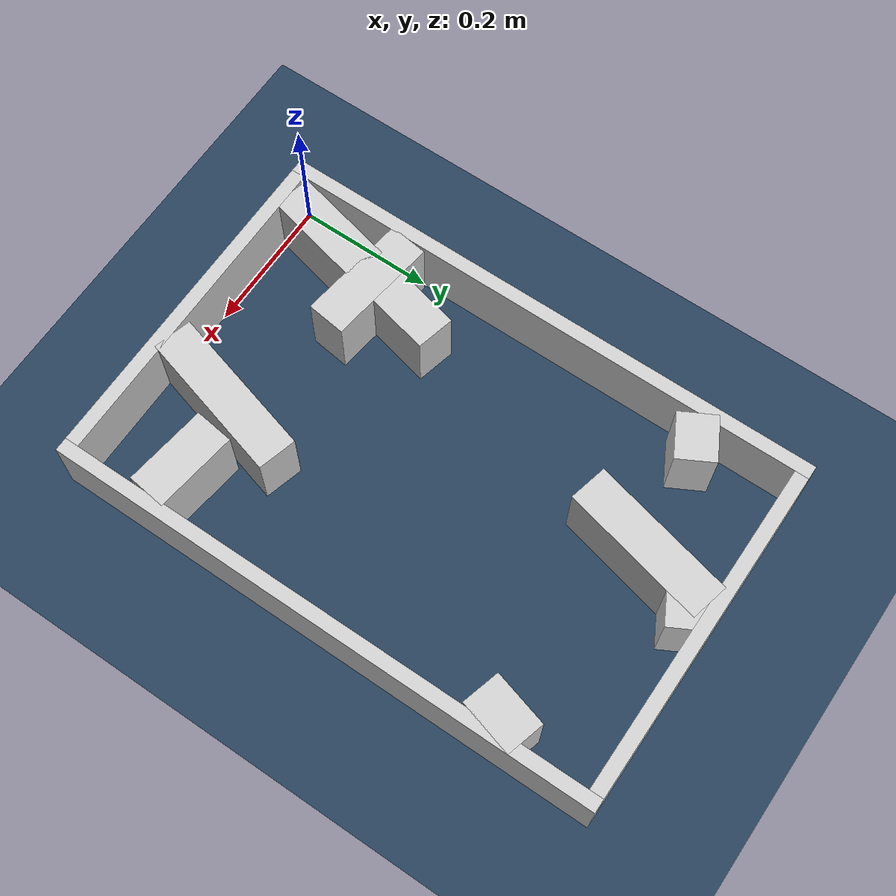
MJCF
<?xml version="1.0" ?>
<mujoco model="generated_real_template">
  <compiler angle="degree"/>
  <option timestep="0.002" integrator="implicitfast" iterations="100" cone="elliptic"/>
  <default>
    <geom density="1"/>
  </default>
  <asset>
    <texture builtin="gradient" height="3072" rgb1="0.3 0.5 0.7" rgb2="0 0 0" type="skybox" width="512"/>
    <texture builtin="checker" height="300" mark="edge" markrgb="0.8 0.8 0.8" name="groundplane" rgb1="0.2 0.3 0.4" rgb2="0.1 0.2 0.3" type="2d" width="300"/>
    <material name="groundplane" reflectance="0.2" texrepeat="5 5" texture="groundplane" texuniform="true"/>
  </asset>
  <worldbody>
    <light dir="0 0 -1" directional="true" pos="0 0 1.5"/>
    <geom name="floor" type="plane" condim="4" friction="0.5 0.005 0.001" material="groundplane" size="0 0 0.05"/>
    <body name="walls">
      <geom name="wall_boundary_left" type="box" condim="4" friction="1.0 0.005 0.0001" rgba="0.8 0.8 0.8 1" pos="-0.010000 0.387500 0.050000" euler="0 0 0.000000" size="0.010000 0.407500 0.050000"/>
      <geom name="wall_boundary_right" type="box" condim="4" friction="1.0 0.005 0.0001" rgba="0.8 0.8 0.8 1" pos="0.500000 0.387500 0.050000" euler="0 0 0.000000" size="0.010000 0.407500 0.050000"/>
      <geom name="wall_boundary_bottom" type="box" condim="4" friction="1.0 0.005 0.0001" rgba="0.8 0.8 0.8 1" pos="0.245000 -0.010000 0.050000" euler="0 0 0.000000" size="0.245000 0.010000 0.050000"/>
      <geom name="wall_boundary_top" type="box" condim="4" friction="1.0 0.005 0.0001" rgba="0.8 0.8 0.8 1" pos="0.245000 0.785000 0.050000" euler="0 0 0.000000" size="0.245000 0.010000 0.050000"/>
      <geom name="wall_inner_1_1" type="box" condim="4" friction="1.0 0.005 0.0001" rgba="0.8 0.8 0.8 1" pos="0.429353 0.119036 0.050000" euler="0 0 172.501497" size="0.061170 0.028500 0.050000"/>
      <geom name="wall_inner_1_2" type="box" condim="4" friction="1.0 0.005 0.0001" rgba="0.8 0.8 0.8 1" pos="0.080976 0.164892 0.050000" euler="0 0 172.501497" size="0.081674 0.028500 0.050000"/>
      <geom name="wall_inner_2_1" type="box" condim="4" friction="1.0 0.005 0.0001" rgba="0.8 0.8 0.8 1" pos="0.029622 0.647746 0.050000" euler="0 0 28.246486" size="0.033626 0.028500 0.050000"/>
      <geom name="wall_inner_2_2" type="box" condim="4" friction="1.0 0.005 0.0001" rgba="0.8 0.8 0.8 1" pos="0.231005 0.755937 0.050000" euler="0 0 28.246486" size="0.029489 0.028500 0.050000"/>
      <geom name="wall_inner_3_1" type="box" condim="4" friction="1.0 0.005 0.0001" rgba="0.8 0.8 0.8 1" pos="0.062997 0.143290 0.050000" euler="0 0 76.702057" size="0.147238 0.028500 0.050000"/>
      <geom name="wall_inner_3_2" type="box" condim="4" friction="1.0 0.005 0.0001" rgba="0.8 0.8 0.8 1" pos="0.187613 0.670535 0.050000" euler="0 0 76.702057" size="0.107343 0.028500 0.050000"/>
      <geom name="wall_inner_4_1" type="box" condim="4" friction="1.0 0.005 0.0001" rgba="0.8 0.8 0.8 1" pos="0.471508 0.641030 0.050000" euler="0 0 -105.430925" size="0.041411 0.028500 0.050000"/>
      <geom name="wall_inner_4_2" type="box" condim="4" friction="1.0 0.005 0.0001" rgba="0.8 0.8 0.8 1" pos="0.324615 0.108858 0.050000" euler="0 0 -105.430925" size="0.112929 0.028500 0.050000"/>
    </body>
  </worldbody>
</mujoco>
